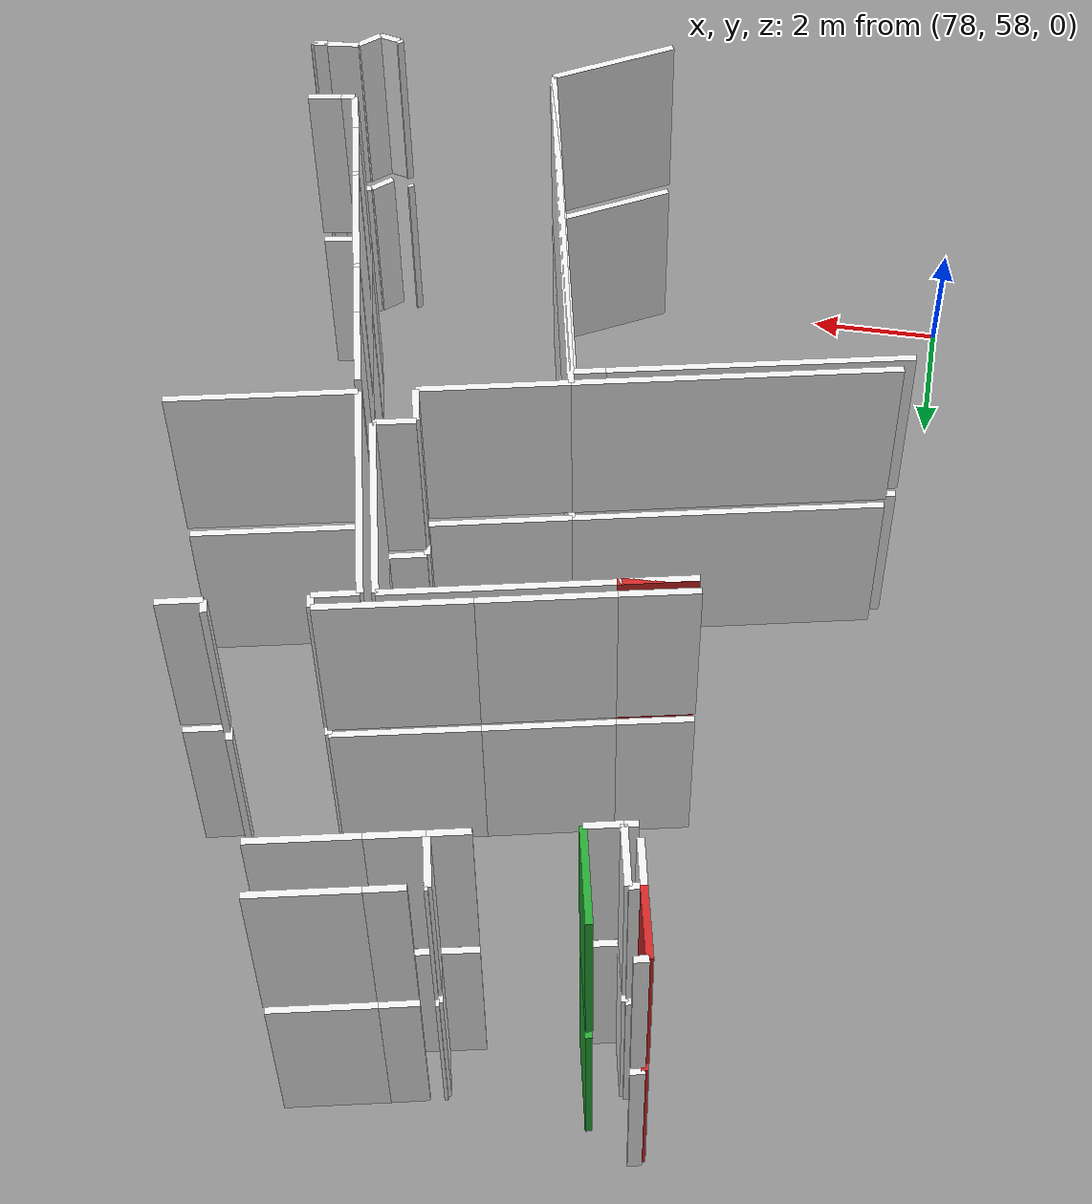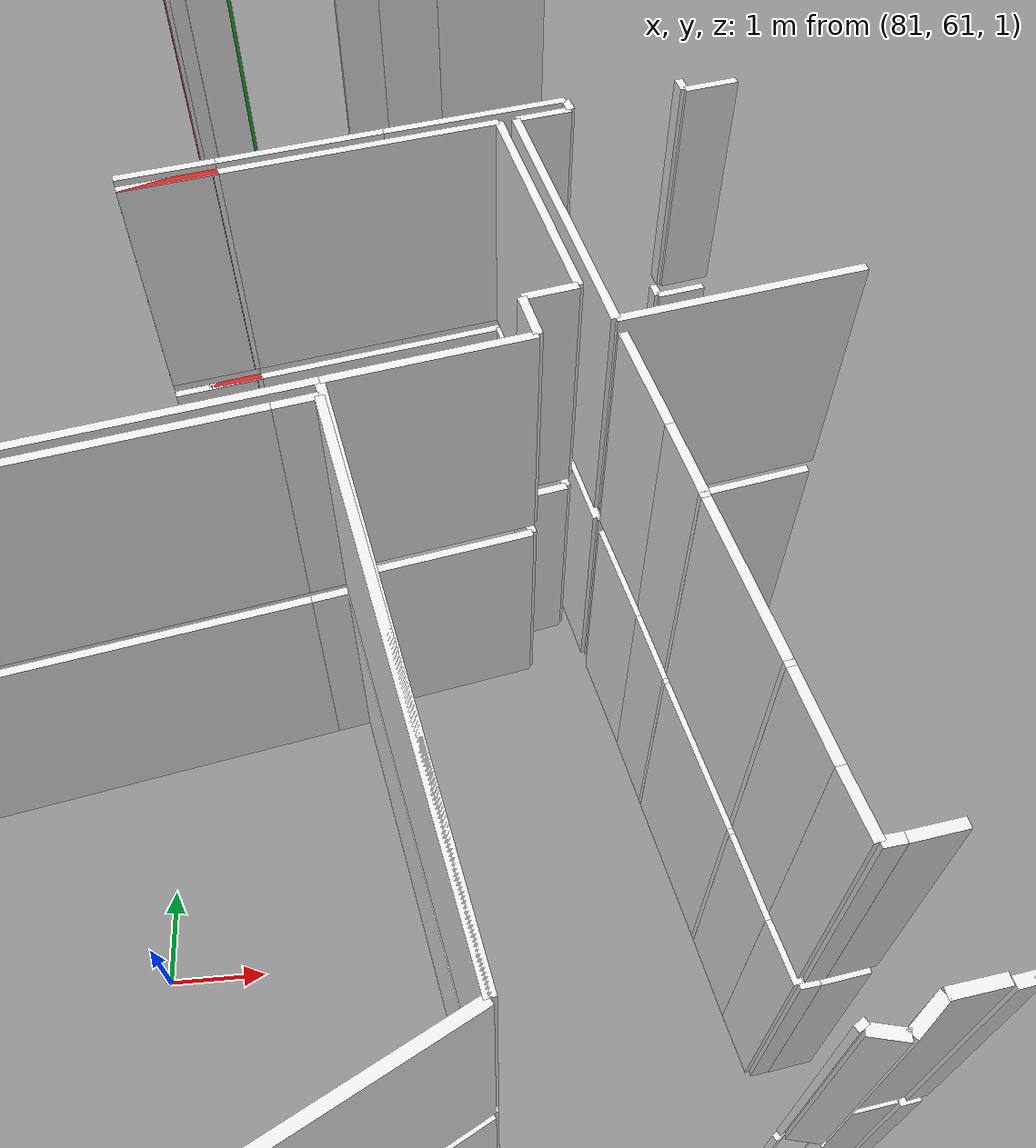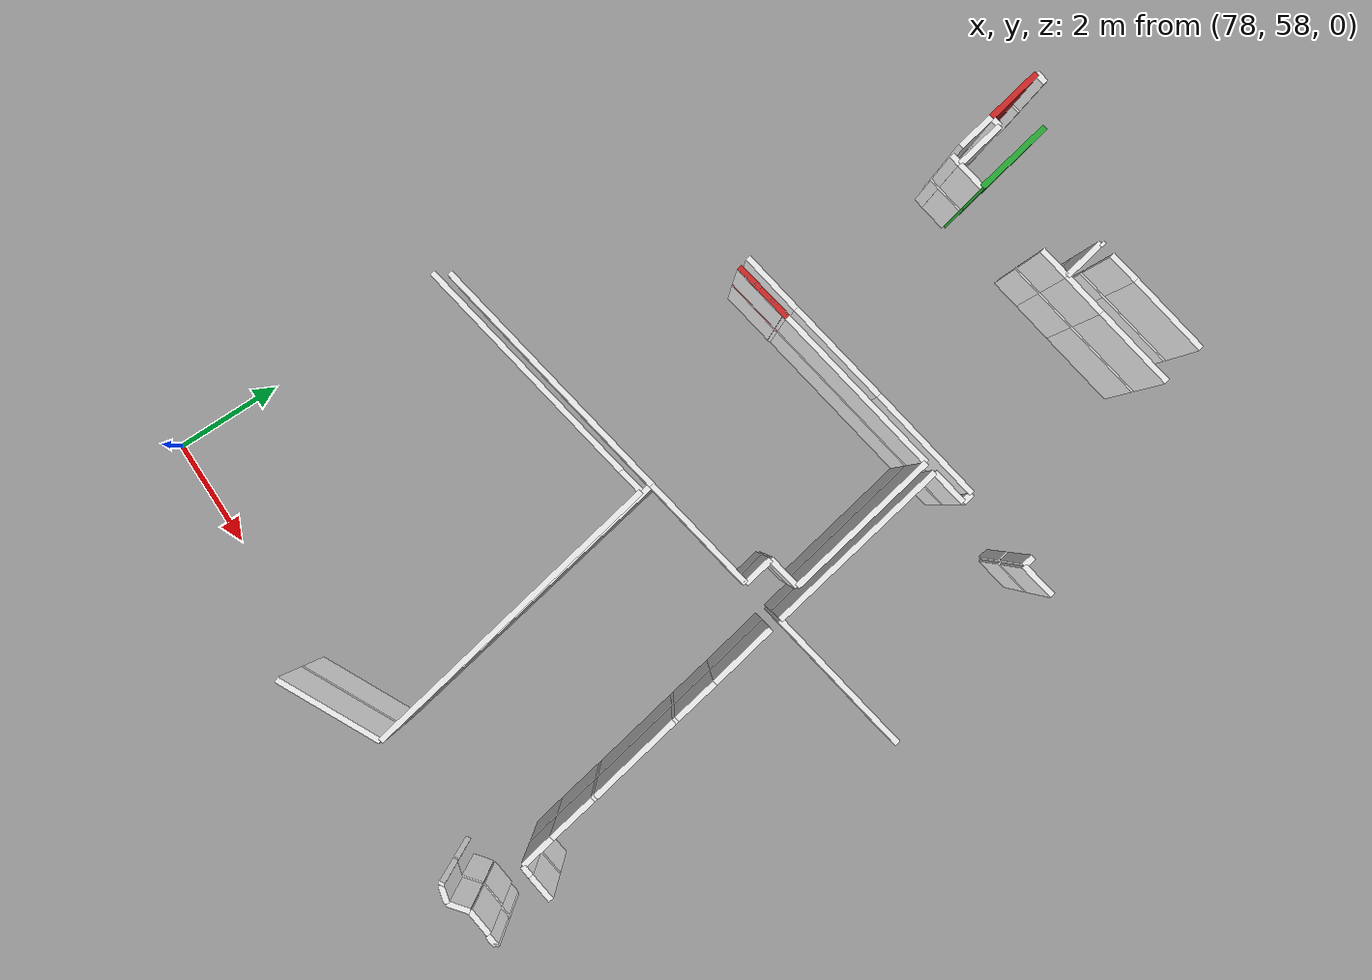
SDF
<sdf version="1.6">
 <world name="default">
  <model name="wall_81.1_72.9_0.0">
   <static>true</static>
   <pose>81.05000000001746 72.92000000015832 1.5 0 0 1.7721134351846652</pose>
   <link name="link">
    <visual name="visual">
     <geometry><box><size>1.0001999799880765 0.1 3</size></box></geometry>
     <material>
      <script><uri>file://media/materials/scripts/gazebo.material</uri><name>Gazebo/Red</name></script>
     </material>
    </visual>
   </link>
  </model>
  <model name="wall_81.6_67.9_0.0">
   <static>true</static>
   <pose>81.55000000001746 67.88999999989755 1.5 0 0 0.2009542638673007</pose>
   <link name="link">
    <visual name="visual">
     <geometry><box><size>1.1021796587332557 0.1 3</size></box></geometry>
     <material>
      <script><uri>file://media/materials/scripts/gazebo.material</uri><name>Gazebo/Red</name></script>
     </material>
    </visual>
   </link>
  </model>
  <model name="wall_81.9_72.4_0.0">
   <static>true</static>
   <pose>81.875 72.38500000000931 1.5 0 0 1.7681918866447774</pose>
   <link name="link">
    <visual name="visual">
     <geometry><box><size>1.3767352687650285 0.1 3</size></box></geometry>
     <material>
      <script><uri>file://media/materials/scripts/gazebo.material</uri><name>Gazebo/Green</name></script>
     </material>
    </visual>
   </link>
  </model>
  <model name="wall_81.2_72.1_0.0">
   <static>true</static>
   <pose>81.21500000002561 72.10000000009313 1.5 0 0 1.7652764429739842</pose>
   <link name="link">
    <visual name="visual">
     <geometry><box><size>0.6726812025007879 0.1 3</size></box></geometry>
     <material>
      <script><uri>file://media/materials/scripts/gazebo.material</uri><name>Gazebo/White</name></script>
     </material>
    </visual>
   </link>
  </model>
  <model name="wall_80.9_64.3_0.0">
   <static>true</static>
   <pose>80.89999999999418 64.30999999982305 1.5 0 0 0.19486391966931105</pose>
   <link name="link">
    <visual name="visual">
     <geometry><box><size>4.647967297627117 0.1 3</size></box></geometry>
     <material>
      <script><uri>file://media/materials/scripts/gazebo.material</uri><name>Gazebo/White</name></script>
     </material>
    </visual>
   </link>
  </model>
  <model name="wall_84.2_65.0_0.0">
   <static>true</static>
   <pose>84.23999999999069 64.96999999997206 1.5 0 0 0.1955806799877843</pose>
   <link name="link">
    <visual name="visual">
     <geometry><box><size>2.1612033685678047 0.1 3</size></box></geometry>
     <material>
      <script><uri>file://media/materials/scripts/gazebo.material</uri><name>Gazebo/White</name></script>
     </material>
    </visual>
   </link>
  </model>
  <model name="wall_85.2_65.5_0.0">
   <static>true</static>
   <pose>85.24499999999534 65.45000000018626 1.5 0 0 1.7717505904446613</pose>
   <link name="link">
    <visual name="visual">
     <geometry><box><size>0.551089829371909 0.1 3</size></box></geometry>
     <material>
      <script><uri>file://media/materials/scripts/gazebo.material</uri><name>Gazebo/White</name></script>
     </material>
    </visual>
   </link>
  </model>
  <model name="wall_85.5_65.8_0.0">
   <static>true</static>
   <pose>85.48500000001513 65.78000000002794 1.5 0 0 0.20065287673540141</pose>
   <link name="link">
    <visual name="visual">
     <geometry><box><size>0.6020797288941763 0.1 3</size></box></geometry>
     <material>
      <script><uri>file://media/materials/scripts/gazebo.material</uri><name>Gazebo/White</name></script>
     </material>
    </visual>
   </link>
  </model>
  <model name="wall_85.5_67.2_0.0">
   <static>true</static>
   <pose>85.5 67.22999999998137 1.5 0 0 1.7695750116283997</pose>
   <link name="link">
    <visual name="visual">
     <geometry><box><size>2.835842026896503 0.1 3</size></box></geometry>
     <material>
      <script><uri>file://media/materials/scripts/gazebo.material</uri><name>Gazebo/White</name></script>
     </material>
    </visual>
   </link>
  </model>
  <model name="wall_83.7_68.3_0.0">
   <static>true</static>
   <pose>83.65499999999884 68.31000000005588 1.5 0 0 -2.9460409760625255</pose>
   <link name="link">
    <visual name="visual">
     <geometry><box><size>3.190814942895208 0.1 3</size></box></geometry>
     <material>
      <script><uri>file://media/materials/scripts/gazebo.material</uri><name>Gazebo/White</name></script>
     </material>
    </visual>
   </link>
  </model>
  <model name="wall_82.1_68.0_0.0">
   <static>true</static>
   <pose>82.06000000002678 67.98999999999069 1.5 0 0 -2.8198420989021127</pose>
   <link name="link">
    <visual name="visual">
     <geometry><box><size>0.06324555320704896 0.1 3</size></box></geometry>
     <material>
      <script><uri>file://media/materials/scripts/gazebo.material</uri><name>Gazebo/White</name></script>
     </material>
    </visual>
   </link>
  </model>
  <model name="wall_81.5_67.9_0.0">
   <static>true</static>
   <pose>81.52000000001863 67.87999999988824 1.5 0 0 -2.9479706605614444</pose>
   <link name="link">
    <visual name="visual">
     <geometry><box><size>1.039422916869021 0.1 3</size></box></geometry>
     <material>
      <script><uri>file://media/materials/scripts/gazebo.material</uri><name>Gazebo/White</name></script>
     </material>
    </visual>
   </link>
  </model>
  <model name="wall_87.8_69.1_0.0">
   <static>true</static>
   <pose>87.75 69.11499999999069 1.5 0 0 -2.9411940992371117</pose>
   <link name="link">
    <visual name="visual">
     <geometry><box><size>0.653069674774366 0.1 3</size></box></geometry>
     <material>
      <script><uri>file://media/materials/scripts/gazebo.material</uri><name>Gazebo/White</name></script>
     </material>
    </visual>
   </link>
  </model>
  <model name="wall_85.7_68.7_0.0">
   <static>true</static>
   <pose>85.73999999999069 68.71499999985099 1.5 0 0 -2.9411940999358763</pose>
   <link name="link">
    <visual name="visual">
     <geometry><box><size>0.6530696746816714 0.1 3</size></box></geometry>
     <material>
      <script><uri>file://media/materials/scripts/gazebo.material</uri><name>Gazebo/White</name></script>
     </material>
    </visual>
   </link>
  </model>
  <model name="wall_85.8_67.0_0.0">
   <static>true</static>
   <pose>85.75 66.98999999999069 1.5 0 0 -1.374559514958863</pose>
   <link name="link">
    <visual name="visual">
     <geometry><box><size>3.384966764819104 0.1 3</size></box></geometry>
     <material>
      <script><uri>file://media/materials/scripts/gazebo.material</uri><name>Gazebo/White</name></script>
     </material>
    </visual>
   </link>
  </model>
  <model name="wall_87.4_65.6_0.0">
   <static>true</static>
   <pose>87.40499999999884 65.59000000008382 1.5 0 0 0.19376449375486982</pose>
   <link name="link">
    <visual name="visual">
     <geometry><box><size>2.70053698360794 0.1 3</size></box></geometry>
     <material>
      <script><uri>file://media/materials/scripts/gazebo.material</uri><name>Gazebo/White</name></script>
     </material>
    </visual>
   </link>
  </model>
  <model name="wall_88.0_58.8_0.0">
   <static>true</static>
   <pose>88.01500000001397 58.769999999785796 1.5 0 0 -1.1071487177940904</pose>
   <link name="link">
    <visual name="visual">
     <geometry><box><size>0.022360679795822902 0.1 3</size></box></geometry>
     <material>
      <script><uri>file://media/materials/scripts/gazebo.material</uri><name>Gazebo/White</name></script>
     </material>
    </visual>
   </link>
  </model>
  <model name="wall_87.9_58.7_0.0">
   <static>true</static>
   <pose>87.9200000000128 58.74499999987893 1.5 0 0 -2.992702706990747</pose>
   <link name="link">
    <visual name="visual">
     <geometry><box><size>0.20223748414268597 0.1 3</size></box></geometry>
     <material>
      <script><uri>file://media/materials/scripts/gazebo.material</uri><name>Gazebo/White</name></script>
     </material>
    </visual>
   </link>
  </model>
  <model name="wall_86.7_58.6_0.0">
   <static>true</static>
   <pose>86.72500000000582 58.55499999993481 1.5 0 0 -1.0303768294346956</pose>
   <link name="link">
    <visual name="visual">
     <geometry><box><size>0.058309519172461015 0.1 3</size></box></geometry>
     <material>
      <script><uri>file://media/materials/scripts/gazebo.material</uri><name>Gazebo/White</name></script>
     </material>
    </visual>
   </link>
  </model>
  <model name="wall_87.2_58.6_0.0">
   <static>true</static>
   <pose>87.19000000000233 58.580000000074506 1.5 0 0 0.6747409426021391</pose>
   <link name="link">
    <visual name="visual">
     <geometry><box><size>0.38418745442196317 0.1 3</size></box></geometry>
     <material>
      <script><uri>file://media/materials/scripts/gazebo.material</uri><name>Gazebo/White</name></script>
     </material>
    </visual>
   </link>
  </model>
  <model name="wall_87.6_58.7_0.0">
   <static>true</static>
   <pose>87.57500000001164 58.72999999998137 1.5 0 0 0.12697278876365076</pose>
   <link name="link">
    <visual name="visual">
     <geometry><box><size>0.4738143095396791 0.1 3</size></box></geometry>
     <material>
      <script><uri>file://media/materials/scripts/gazebo.material</uri><name>Gazebo/White</name></script>
     </material>
    </visual>
   </link>
  </model>
  <model name="wall_87.8_58.7_0.0">
   <static>true</static>
   <pose>87.81500000000233 58.74499999987893 1.5 0 0 -1.249045770069948</pose>
   <link name="link">
    <visual name="visual">
     <geometry><box><size>0.031622776410252254 0.1 3</size></box></geometry>
     <material>
      <script><uri>file://media/materials/scripts/gazebo.material</uri><name>Gazebo/White</name></script>
     </material>
    </visual>
   </link>
  </model>
  <model name="wall_84.3_72.9_0.0">
   <static>true</static>
   <pose>84.29000000000815 72.92500000004657 1.5 0 0 0.2009542634638528</pose>
   <link name="link">
    <visual name="visual">
     <geometry><box><size>0.5510898292916356 0.1 3</size></box></geometry>
     <material>
      <script><uri>file://media/materials/scripts/gazebo.material</uri><name>Gazebo/White</name></script>
     </material>
    </visual>
   </link>
  </model>
  <model name="wall_85.3_73.1_0.0">
   <static>true</static>
   <pose>85.2950000000128 73.125 1.5 0 0 0.19477776480304612</pose>
   <link name="link">
    <visual name="visual">
     <geometry><box><size>1.4983324064140755 0.1 3</size></box></geometry>
     <material>
      <script><uri>file://media/materials/scripts/gazebo.material</uri><name>Gazebo/White</name></script>
     </material>
    </visual>
   </link>
  </model>
  <model name="wall_83.8_72.8_0.0">
   <static>true</static>
   <pose>83.7950000000128 72.83499999996275 1.5 0 0 -2.9441970979935492</pose>
   <link name="link">
    <visual name="visual">
     <geometry><box><size>0.050990195080677016 0.1 3</size></box></geometry>
     <material>
      <script><uri>file://media/materials/scripts/gazebo.material</uri><name>Gazebo/White</name></script>
     </material>
    </visual>
   </link>
  </model>
  <model name="wall_83.8_72.5_0.0">
   <static>true</static>
   <pose>83.84500000000116 72.45999999996275 1.5 0 0 -1.3708033702928581</pose>
   <link name="link">
    <visual name="visual">
     <geometry><box><size>0.7550496674526308 0.1 3</size></box></geometry>
     <material>
      <script><uri>file://media/materials/scripts/gazebo.material</uri><name>Gazebo/White</name></script>
     </material>
    </visual>
   </link>
  </model>
  <model name="wall_83.6_72.0_0.0">
   <static>true</static>
   <pose>83.63999999998487 72.03499999991618 1.5 0 0 -2.9476335065532946</pose>
   <link name="link">
    <visual name="visual">
     <geometry><box><size>0.5707013229077953 0.1 3</size></box></geometry>
     <material>
      <script><uri>file://media/materials/scripts/gazebo.material</uri><name>Gazebo/White</name></script>
     </material>
    </visual>
   </link>
  </model>
  <model name="wall_81.8_71.7_0.0">
   <static>true</static>
   <pose>81.76000000000931 71.65999999991618 1.5 0 0 -2.944197093560812</pose>
   <link name="link">
    <visual name="visual">
     <geometry><box><size>0.5099019513775432 0.1 3</size></box></geometry>
     <material>
      <script><uri>file://media/materials/scripts/gazebo.material</uri><name>Gazebo/White</name></script>
     </material>
    </visual>
   </link>
  </model>
  <model name="wall_81.4_72.0_0.0">
   <static>true</static>
   <pose>81.42500000001746 72.04000000003725 1.5 0 0 1.7659547538191616</pose>
   <link name="link">
    <visual name="visual">
     <geometry><box><size>0.8766413180834757 0.1 3</size></box></geometry>
     <material>
      <script><uri>file://media/materials/scripts/gazebo.material</uri><name>Gazebo/White</name></script>
     </material>
    </visual>
   </link>
  </model>
  <model name="wall_81.2_72.5_0.0">
   <static>true</static>
   <pose>81.24500000002445 72.45000000018626 1.5 0 0 -2.9340964269693144</pose>
   <link name="link">
    <visual name="visual">
     <geometry><box><size>0.19416487839942884 0.1 3</size></box></geometry>
     <material>
      <script><uri>file://media/materials/scripts/gazebo.material</uri><name>Gazebo/White</name></script>
     </material>
    </visual>
   </link>
  </model>
  <model name="wall_81.1_73.4_0.0">
   <static>true</static>
   <pose>81.05000000001746 73.43000000016764 1.5 0 0 0.19739556001778746</pose>
   <link name="link">
    <visual name="visual">
     <geometry><box><size>0.20396078056243275 0.1 3</size></box></geometry>
     <material>
      <script><uri>file://media/materials/scripts/gazebo.material</uri><name>Gazebo/White</name></script>
     </material>
    </visual>
   </link>
  </model>
  <model name="wall_87.6_59.8_0.0">
   <static>true</static>
   <pose>87.63500000000931 59.84499999997206 1.5 0 0 -2.9996955993182444</pose>
   <link name="link">
    <visual name="visual">
     <geometry><box><size>0.494974746797656 0.1 3</size></box></geometry>
     <material>
      <script><uri>file://media/materials/scripts/gazebo.material</uri><name>Gazebo/White</name></script>
     </material>
    </visual>
   </link>
  </model>
  <model name="wall_87.3_59.8_0.0">
   <static>true</static>
   <pose>87.29000000000815 59.800000000046566 1.5 0 0 -3.0419240010121844</pose>
   <link name="link">
    <visual name="visual">
     <geometry><box><size>0.20099751243585498 0.1 3</size></box></geometry>
     <material>
      <script><uri>file://media/materials/scripts/gazebo.material</uri><name>Gazebo/White</name></script>
     </material>
    </visual>
   </link>
  </model>
  <model name="wall_87.1_60.1_0.0">
   <static>true</static>
   <pose>87.125 60.10000000009313 1.5 0 0 1.7774795452501364</pose>
   <link name="link">
    <visual name="visual">
     <geometry><box><size>0.6334824386988099 0.1 3</size></box></geometry>
     <material>
      <script><uri>file://media/materials/scripts/gazebo.material</uri><name>Gazebo/White</name></script>
     </material>
    </visual>
   </link>
  </model>
  <model name="wall_87.0_60.9_0.0">
   <static>true</static>
   <pose>86.97500000000582 60.85000000009313 1.5 0 0 1.7616274295219554</pose>
   <link name="link">
    <visual name="visual">
     <geometry><box><size>0.896270048477446 0.1 3</size></box></geometry>
     <material>
      <script><uri>file://media/materials/scripts/gazebo.material</uri><name>Gazebo/White</name></script>
     </material>
    </visual>
   </link>
  </model>
  <model name="wall_86.9_61.3_0.0">
   <static>true</static>
   <pose>86.88500000000931 61.32000000006519 1.5 0 0 1.7359450042095235</pose>
   <link name="link">
    <visual name="visual">
     <geometry><box><size>0.060827625359632334 0.1 3</size></box></geometry>
     <material>
      <script><uri>file://media/materials/scripts/gazebo.material</uri><name>Gazebo/White</name></script>
     </material>
    </visual>
   </link>
  </model>
  <model name="wall_86.7_62.2_0.0">
   <static>true</static>
   <pose>86.70999999999185 62.19500000006519 1.5 0 0 1.7693295426026865</pose>
   <link name="link">
    <visual name="visual">
     <geometry><box><size>1.7238619433784548 0.1 3</size></box></geometry>
     <material>
      <script><uri>file://media/materials/scripts/gazebo.material</uri><name>Gazebo/White</name></script>
     </material>
    </visual>
   </link>
  </model>
  <model name="wall_86.5_63.1_0.0">
   <static>true</static>
   <pose>86.53500000000349 63.07000000006519 1.5 0 0 1.7359450032656154</pose>
   <link name="link">
    <visual name="visual">
     <geometry><box><size>0.06082762535006306 0.1 3</size></box></geometry>
     <material>
      <script><uri>file://media/materials/scripts/gazebo.material</uri><name>Gazebo/White</name></script>
     </material>
    </visual>
   </link>
  </model>
  <model name="wall_86.5_63.5_0.0">
   <static>true</static>
   <pose>86.45000000001164 63.51000000000931 1.5 0 0 1.7634970855340029</pose>
   <link name="link">
    <visual name="visual">
     <geometry><box><size>0.8354639428099243 0.1 3</size></box></geometry>
     <material>
      <script><uri>file://media/materials/scripts/gazebo.material</uri><name>Gazebo/White</name></script>
     </material>
    </visual>
   </link>
  </model>
  <model name="wall_86.2_64.5_0.0">
   <static>true</static>
   <pose>86.24499999999534 64.52499999990687 1.5 0 0 1.7745410076848542</pose>
   <link name="link">
    <visual name="visual">
     <geometry><box><size>1.2355565547193088 0.1 3</size></box></geometry>
     <material>
      <script><uri>file://media/materials/scripts/gazebo.material</uri><name>Gazebo/White</name></script>
     </material>
    </visual>
   </link>
  </model>
  <model name="wall_87.4_69.1_0.0">
   <static>true</static>
   <pose>87.41000000000349 69.14999999990687 1.5 0 0 -1.3734007672248605</pose>
   <link name="link">
    <visual name="visual">
     <geometry><box><size>0.2039607807222492 0.1 3</size></box></geometry>
     <material>
      <script><uri>file://media/materials/scripts/gazebo.material</uri><name>Gazebo/White</name></script>
     </material>
    </visual>
   </link>
  </model>
  <model name="wall_86.0_68.9_0.0">
   <static>true</static>
   <pose>86.04000000000815 68.875 1.5 0 0 1.7782925526897098</pose>
   <link name="link">
    <visual name="visual">
     <geometry><box><size>0.1941648787861511 0.1 3</size></box></geometry>
     <material>
      <script><uri>file://media/materials/scripts/gazebo.material</uri><name>Gazebo/White</name></script>
     </material>
    </visual>
   </link>
  </model>
  <model name="wall_85.0_68.8_0.0">
   <static>true</static>
   <pose>84.96499999999651 68.76500000013039 1.5 0 0 -2.9496714915424067</pose>
   <link name="link">
    <visual name="visual">
     <geometry><box><size>2.1494650497993386 0.1 3</size></box></geometry>
     <material>
      <script><uri>file://media/materials/scripts/gazebo.material</uri><name>Gazebo/White</name></script>
     </material>
    </visual>
   </link>
  </model>
  <model name="wall_83.0_68.4_0.0">
   <static>true</static>
   <pose>82.97999999998137 68.375 1.5 0 0 -2.9452312194754318</pose>
   <link name="link">
    <visual name="visual">
     <geometry><box><size>1.8964440408382035 0.1 3</size></box></geometry>
     <material>
      <script><uri>file://media/materials/scripts/gazebo.material</uri><name>Gazebo/White</name></script>
     </material>
    </visual>
   </link>
  </model>
  <model name="wall_81.5_68.1_0.0">
   <static>true</static>
   <pose>81.50500000000466 68.08499999996275 1.5 0 0 -2.9512641139252844</pose>
   <link name="link">
    <visual name="visual">
     <geometry><box><size>1.1100450440920377 0.1 3</size></box></geometry>
     <material>
      <script><uri>file://media/materials/scripts/gazebo.material</uri><name>Gazebo/White</name></script>
     </material>
    </visual>
   </link>
  </model>
  <model name="wall_81.4_71.6_0.0">
   <static>true</static>
   <pose>81.41500000000815 71.59499999997206 1.5 0 0 0.15660187592798475</pose>
   <link name="link">
    <visual name="visual">
     <geometry><box><size>0.19235384058705793 0.1 3</size></box></geometry>
     <material>
      <script><uri>file://media/materials/scripts/gazebo.material</uri><name>Gazebo/White</name></script>
     </material>
    </visual>
   </link>
  </model>
  <model name="wall_84.3_72.2_0.0">
   <static>true</static>
   <pose>84.30999999999767 72.16500000003725 1.5 0 0 0.18998828837264137</pose>
   <link name="link">
    <visual name="visual">
     <geometry><box><size>0.7942921377902116 0.1 3</size></box></geometry>
     <material>
      <script><uri>file://media/materials/scripts/gazebo.material</uri><name>Gazebo/White</name></script>
     </material>
    </visual>
   </link>
  </model>
  <model name="wall_85.4_72.4_0.0">
   <static>true</static>
   <pose>85.44000000000233 72.38500000000931 1.5 0 0 0.19349440901301387</pose>
   <link name="link">
    <visual name="visual">
     <geometry><box><size>1.5081445553050903 0.1 3</size></box></geometry>
     <material>
      <script><uri>file://media/materials/scripts/gazebo.material</uri><name>Gazebo/White</name></script>
     </material>
    </visual>
   </link>
  </model>
  <model name="wall_80.6_64.1_0.0">
   <static>true</static>
   <pose>80.59999999997672 64.05000000004657 1.5 0 0 0.19468553945508393</pose>
   <link name="link">
    <visual name="visual">
     <geometry><box><size>4.342027176401746 0.1 3</size></box></geometry>
     <material>
      <script><uri>file://media/materials/scripts/gazebo.material</uri><name>Gazebo/White</name></script>
     </material>
    </visual>
   </link>
  </model>
  <model name="wall_83.0_64.5_0.0">
   <static>true</static>
   <pose>82.9549999999872 64.51500000013039 1.5 0 0 0.19739555952650487</pose>
   <link name="link">
    <visual name="visual">
     <geometry><box><size>0.45891175620554253 0.1 3</size></box></geometry>
     <material>
      <script><uri>file://media/materials/scripts/gazebo.material</uri><name>Gazebo/White</name></script>
     </material>
    </visual>
   </link>
  </model>
  <model name="wall_83.7_61.8_0.0">
   <static>true</static>
   <pose>83.73999999999069 61.75500000012107 1.5 0 0 -1.3737435848915833</pose>
   <link name="link">
    <visual name="visual">
     <geometry><box><size>5.720707998012715 0.1 3</size></box></geometry>
     <material>
      <script><uri>file://media/materials/scripts/gazebo.material</uri><name>Gazebo/White</name></script>
     </material>
    </visual>
   </link>
  </model>
  <model name="wall_83.4_58.5_0.0">
   <static>true</static>
   <pose>83.44500000000698 58.515000000130385 1.5 0 0 -2.6709521515229318</pose>
   <link name="link">
    <visual name="visual">
     <geometry><box><size>1.9185932346558128 0.1 3</size></box></geometry>
     <material>
      <script><uri>file://media/materials/scripts/gazebo.material</uri><name>Gazebo/White</name></script>
     </material>
    </visual>
   </link>
  </model>
  <model name="wall_83.7_61.9_0.0">
   <static>true</static>
   <pose>83.73999999999069 61.85499999998137 1.5 0 0 1.761231442220787</pose>
   <link name="link">
    <visual name="visual">
     <geometry><box><size>5.91696712811791 0.1 3</size></box></geometry>
     <material>
      <script><uri>file://media/materials/scripts/gazebo.material</uri><name>Gazebo/White</name></script>
     </material>
    </visual>
   </link>
  </model>
  <model name="wall_81.1_72.9_3.2">
   <static>true</static>
   <pose>81.05000000001746 72.92000000015832 4.7 0 0 1.7721134351846652</pose>
   <link name="link">
    <visual name="visual">
     <geometry><box><size>1.0001999799880765 0.1 3</size></box></geometry>
     <material>
      <script><uri>file://media/materials/scripts/gazebo.material</uri><name>Gazebo/Red</name></script>
     </material>
    </visual>
   </link>
  </model>
  <model name="wall_81.6_67.9_3.2">
   <static>true</static>
   <pose>81.55000000001746 67.88999999989755 4.7 0 0 0.2009542638673007</pose>
   <link name="link">
    <visual name="visual">
     <geometry><box><size>1.1021796587332557 0.1 3</size></box></geometry>
     <material>
      <script><uri>file://media/materials/scripts/gazebo.material</uri><name>Gazebo/Red</name></script>
     </material>
    </visual>
   </link>
  </model>
  <model name="wall_81.9_72.4_3.2">
   <static>true</static>
   <pose>81.875 72.38500000000931 4.7 0 0 1.7681918866447774</pose>
   <link name="link">
    <visual name="visual">
     <geometry><box><size>1.3767352687650285 0.1 3</size></box></geometry>
     <material>
      <script><uri>file://media/materials/scripts/gazebo.material</uri><name>Gazebo/Green</name></script>
     </material>
    </visual>
   </link>
  </model>
  <model name="wall_81.2_72.1_3.2">
   <static>true</static>
   <pose>81.21500000002561 72.10000000009313 4.7 0 0 1.7652764429739842</pose>
   <link name="link">
    <visual name="visual">
     <geometry><box><size>0.6726812025007879 0.1 3</size></box></geometry>
     <material>
      <script><uri>file://media/materials/scripts/gazebo.material</uri><name>Gazebo/White</name></script>
     </material>
    </visual>
   </link>
  </model>
  <model name="wall_80.9_64.3_3.2">
   <static>true</static>
   <pose>80.89999999999418 64.30999999982305 4.7 0 0 0.19486391966931105</pose>
   <link name="link">
    <visual name="visual">
     <geometry><box><size>4.647967297627117 0.1 3</size></box></geometry>
     <material>
      <script><uri>file://media/materials/scripts/gazebo.material</uri><name>Gazebo/White</name></script>
     </material>
    </visual>
   </link>
  </model>
  <model name="wall_84.2_65.0_3.2">
   <static>true</static>
   <pose>84.23999999999069 64.96999999997206 4.7 0 0 0.1955806799877843</pose>
   <link name="link">
    <visual name="visual">
     <geometry><box><size>2.1612033685678047 0.1 3</size></box></geometry>
     <material>
      <script><uri>file://media/materials/scripts/gazebo.material</uri><name>Gazebo/White</name></script>
     </material>
    </visual>
   </link>
  </model>
  <model name="wall_85.2_65.5_3.2">
   <static>true</static>
   <pose>85.24499999999534 65.45000000018626 4.7 0 0 1.7717505904446613</pose>
   <link name="link">
    <visual name="visual">
     <geometry><box><size>0.551089829371909 0.1 3</size></box></geometry>
     <material>
      <script><uri>file://media/materials/scripts/gazebo.material</uri><name>Gazebo/White</name></script>
     </material>
    </visual>
   </link>
  </model>
  <model name="wall_85.5_65.8_3.2">
   <static>true</static>
   <pose>85.48500000001513 65.78000000002794 4.7 0 0 0.20065287673540141</pose>
   <link name="link">
    <visual name="visual">
     <geometry><box><size>0.6020797288941763 0.1 3</size></box></geometry>
     <material>
      <script><uri>file://media/materials/scripts/gazebo.material</uri><name>Gazebo/White</name></script>
     </material>
    </visual>
   </link>
  </model>
  <model name="wall_85.5_67.2_3.2">
   <static>true</static>
   <pose>85.5 67.22999999998137 4.7 0 0 1.7695750116283997</pose>
   <link name="link">
    <visual name="visual">
     <geometry><box><size>2.835842026896503 0.1 3</size></box></geometry>
     <material>
      <script><uri>file://media/materials/scripts/gazebo.material</uri><name>Gazebo/White</name></script>
     </material>
    </visual>
   </link>
  </model>
  <model name="wall_83.7_68.3_3.2">
   <static>true</static>
   <pose>83.65499999999884 68.31000000005588 4.7 0 0 -2.9460409760625255</pose>
   <link name="link">
    <visual name="visual">
     <geometry><box><size>3.190814942895208 0.1 3</size></box></geometry>
     <material>
      <script><uri>file://media/materials/scripts/gazebo.material</uri><name>Gazebo/White</name></script>
     </material>
    </visual>
   </link>
  </model>
  <model name="wall_82.1_68.0_3.2">
   <static>true</static>
   <pose>82.06000000002678 67.98999999999069 4.7 0 0 -2.8198420989021127</pose>
   <link name="link">
    <visual name="visual">
     <geometry><box><size>0.06324555320704896 0.1 3</size></box></geometry>
     <material>
      <script><uri>file://media/materials/scripts/gazebo.material</uri><name>Gazebo/White</name></script>
     </material>
    </visual>
   </link>
  </model>
  <model name="wall_81.5_67.9_3.2">
   <static>true</static>
   <pose>81.52000000001863 67.87999999988824 4.7 0 0 -2.9479706605614444</pose>
   <link name="link">
    <visual name="visual">
     <geometry><box><size>1.039422916869021 0.1 3</size></box></geometry>
     <material>
      <script><uri>file://media/materials/scripts/gazebo.material</uri><name>Gazebo/White</name></script>
     </material>
    </visual>
   </link>
  </model>
  <model name="wall_87.8_69.1_3.2">
   <static>true</static>
   <pose>87.75 69.11499999999069 4.7 0 0 -2.9411940992371117</pose>
   <link name="link">
    <visual name="visual">
     <geometry><box><size>0.653069674774366 0.1 3</size></box></geometry>
     <material>
      <script><uri>file://media/materials/scripts/gazebo.material</uri><name>Gazebo/White</name></script>
     </material>
    </visual>
   </link>
  </model>
  <model name="wall_85.7_68.7_3.2">
   <static>true</static>
   <pose>85.73999999999069 68.71499999985099 4.7 0 0 -2.9411940999358763</pose>
   <link name="link">
    <visual name="visual">
     <geometry><box><size>0.6530696746816714 0.1 3</size></box></geometry>
     <material>
      <script><uri>file://media/materials/scripts/gazebo.material</uri><name>Gazebo/White</name></script>
     </material>
    </visual>
   </link>
  </model>
  <model name="wall_85.8_67.0_3.2">
   <static>true</static>
   <pose>85.75 66.98999999999069 4.7 0 0 -1.374559514958863</pose>
   <link name="link">
    <visual name="visual">
     <geometry><box><size>3.384966764819104 0.1 3</size></box></geometry>
     <material>
      <script><uri>file://media/materials/scripts/gazebo.material</uri><name>Gazebo/White</name></script>
     </material>
    </visual>
   </link>
  </model>
  <model name="wall_87.4_65.6_3.2">
   <static>true</static>
   <pose>87.40499999999884 65.59000000008382 4.7 0 0 0.19376449375486982</pose>
   <link name="link">
    <visual name="visual">
     <geometry><box><size>2.70053698360794 0.1 3</size></box></geometry>
     <material>
      <script><uri>file://media/materials/scripts/gazebo.material</uri><name>Gazebo/White</name></script>
     </material>
    </visual>
   </link>
  </model>
  <model name="wall_88.0_58.8_3.2">
   <static>true</static>
   <pose>88.01500000001397 58.769999999785796 4.7 0 0 -1.1071487177940904</pose>
   <link name="link">
    <visual name="visual">
     <geometry><box><size>0.022360679795822902 0.1 3</size></box></geometry>
     <material>
      <script><uri>file://media/materials/scripts/gazebo.material</uri><name>Gazebo/White</name></script>
     </material>
    </visual>
   </link>
  </model>
  <model name="wall_87.9_58.7_3.2">
   <static>true</static>
   <pose>87.9200000000128 58.74499999987893 4.7 0 0 -2.992702706990747</pose>
   <link name="link">
    <visual name="visual">
     <geometry><box><size>0.20223748414268597 0.1 3</size></box></geometry>
     <material>
      <script><uri>file://media/materials/scripts/gazebo.material</uri><name>Gazebo/White</name></script>
     </material>
    </visual>
   </link>
  </model>
  <model name="wall_86.7_58.6_3.2">
   <static>true</static>
   <pose>86.72500000000582 58.55499999993481 4.7 0 0 -1.0303768294346956</pose>
   <link name="link">
    <visual name="visual">
     <geometry><box><size>0.058309519172461015 0.1 3</size></box></geometry>
     <material>
      <script><uri>file://media/materials/scripts/gazebo.material</uri><name>Gazebo/White</name></script>
     </material>
    </visual>
   </link>
  </model>
  <model name="wall_86.9_58.5_3.2">
   <static>true</static>
   <pose>86.88999999998487 58.49499999987893 4.7 0 0 -0.22923193275564116</pose>
   <link name="link">
    <visual name="visual">
     <geometry><box><size>0.30805843596555793 0.1 3</size></box></geometry>
     <material>
      <script><uri>file://media/materials/scripts/gazebo.material</uri><name>Gazebo/White</name></script>
     </material>
    </visual>
   </link>
  </model>
  <model name="wall_87.2_58.6_3.2">
   <static>true</static>
   <pose>87.19000000000233 58.580000000074506 4.7 0 0 0.6747409426021391</pose>
   <link name="link">
    <visual name="visual">
     <geometry><box><size>0.38418745442196317 0.1 3</size></box></geometry>
     <material>
      <script><uri>file://media/materials/scripts/gazebo.material</uri><name>Gazebo/White</name></script>
     </material>
    </visual>
   </link>
  </model>
  <model name="wall_87.6_58.7_3.2">
   <static>true</static>
   <pose>87.57500000001164 58.72999999998137 4.7 0 0 0.12697278876365076</pose>
   <link name="link">
    <visual name="visual">
     <geometry><box><size>0.4738143095396791 0.1 3</size></box></geometry>
     <material>
      <script><uri>file://media/materials/scripts/gazebo.material</uri><name>Gazebo/White</name></script>
     </material>
    </visual>
   </link>
  </model>
  <model name="wall_87.8_58.7_3.2">
   <static>true</static>
   <pose>87.81500000000233 58.74499999987893 4.7 0 0 -1.249045770069948</pose>
   <link name="link">
    <visual name="visual">
     <geometry><box><size>0.031622776410252254 0.1 3</size></box></geometry>
     <material>
      <script><uri>file://media/materials/scripts/gazebo.material</uri><name>Gazebo/White</name></script>
     </material>
    </visual>
   </link>
  </model>
  <model name="wall_84.3_72.9_3.2">
   <static>true</static>
   <pose>84.29000000000815 72.92500000004657 4.7 0 0 0.2009542634638528</pose>
   <link name="link">
    <visual name="visual">
     <geometry><box><size>0.5510898292916356 0.1 3</size></box></geometry>
     <material>
      <script><uri>file://media/materials/scripts/gazebo.material</uri><name>Gazebo/White</name></script>
     </material>
    </visual>
   </link>
  </model>
  <model name="wall_85.3_73.1_3.2">
   <static>true</static>
   <pose>85.2950000000128 73.125 4.7 0 0 0.19477776480304612</pose>
   <link name="link">
    <visual name="visual">
     <geometry><box><size>1.4983324064140755 0.1 3</size></box></geometry>
     <material>
      <script><uri>file://media/materials/scripts/gazebo.material</uri><name>Gazebo/White</name></script>
     </material>
    </visual>
   </link>
  </model>
  <model name="wall_83.8_72.8_3.2">
   <static>true</static>
   <pose>83.7950000000128 72.83499999996275 4.7 0 0 -2.9441970979935492</pose>
   <link name="link">
    <visual name="visual">
     <geometry><box><size>0.050990195080677016 0.1 3</size></box></geometry>
     <material>
      <script><uri>file://media/materials/scripts/gazebo.material</uri><name>Gazebo/White</name></script>
     </material>
    </visual>
   </link>
  </model>
  <model name="wall_83.8_72.5_3.2">
   <static>true</static>
   <pose>83.84500000000116 72.45999999996275 4.7 0 0 -1.3708033702928581</pose>
   <link name="link">
    <visual name="visual">
     <geometry><box><size>0.7550496674526308 0.1 3</size></box></geometry>
     <material>
      <script><uri>file://media/materials/scripts/gazebo.material</uri><name>Gazebo/White</name></script>
     </material>
    </visual>
   </link>
  </model>
  <model name="wall_83.6_72.0_3.2">
   <static>true</static>
   <pose>83.63999999998487 72.03499999991618 4.7 0 0 -2.9476335065532946</pose>
   <link name="link">
    <visual name="visual">
     <geometry><box><size>0.5707013229077953 0.1 3</size></box></geometry>
     <material>
      <script><uri>file://media/materials/scripts/gazebo.material</uri><name>Gazebo/White</name></script>
     </material>
    </visual>
   </link>
  </model>
  <model name="wall_81.8_71.7_3.2">
   <static>true</static>
   <pose>81.76000000000931 71.65999999991618 4.7 0 0 -2.944197093560812</pose>
   <link name="link">
    <visual name="visual">
     <geometry><box><size>0.5099019513775432 0.1 3</size></box></geometry>
     <material>
      <script><uri>file://media/materials/scripts/gazebo.material</uri><name>Gazebo/White</name></script>
     </material>
    </visual>
   </link>
  </model>
  <model name="wall_81.4_72.0_3.2">
   <static>true</static>
   <pose>81.42500000001746 72.04000000003725 4.7 0 0 1.7659547538191616</pose>
   <link name="link">
    <visual name="visual">
     <geometry><box><size>0.8766413180834757 0.1 3</size></box></geometry>
     <material>
      <script><uri>file://media/materials/scripts/gazebo.material</uri><name>Gazebo/White</name></script>
     </material>
    </visual>
   </link>
  </model>
  <model name="wall_81.2_72.5_3.2">
   <static>true</static>
   <pose>81.24500000002445 72.45000000018626 4.7 0 0 -2.9340964269693144</pose>
   <link name="link">
    <visual name="visual">
     <geometry><box><size>0.19416487839942884 0.1 3</size></box></geometry>
     <material>
      <script><uri>file://media/materials/scripts/gazebo.material</uri><name>Gazebo/White</name></script>
     </material>
    </visual>
   </link>
  </model>
  <model name="wall_81.1_73.4_3.2">
   <static>true</static>
   <pose>81.05000000001746 73.43000000016764 4.7 0 0 0.19739556001778746</pose>
   <link name="link">
    <visual name="visual">
     <geometry><box><size>0.20396078056243275 0.1 3</size></box></geometry>
     <material>
      <script><uri>file://media/materials/scripts/gazebo.material</uri><name>Gazebo/White</name></script>
     </material>
    </visual>
   </link>
  </model>
  <model name="wall_87.6_59.8_3.2">
   <static>true</static>
   <pose>87.63500000000931 59.84499999997206 4.7 0 0 -2.9996955993182444</pose>
   <link name="link">
    <visual name="visual">
     <geometry><box><size>0.494974746797656 0.1 3</size></box></geometry>
     <material>
      <script><uri>file://media/materials/scripts/gazebo.material</uri><name>Gazebo/White</name></script>
     </material>
    </visual>
   </link>
  </model>
  <model name="wall_87.3_59.8_3.2">
   <static>true</static>
   <pose>87.29000000000815 59.800000000046566 4.7 0 0 -3.0419240010121844</pose>
   <link name="link">
    <visual name="visual">
     <geometry><box><size>0.20099751243585498 0.1 3</size></box></geometry>
     <material>
      <script><uri>file://media/materials/scripts/gazebo.material</uri><name>Gazebo/White</name></script>
     </material>
    </visual>
   </link>
  </model>
  <model name="wall_87.1_60.1_3.2">
   <static>true</static>
   <pose>87.125 60.10000000009313 4.7 0 0 1.7774795452501364</pose>
   <link name="link">
    <visual name="visual">
     <geometry><box><size>0.6334824386988099 0.1 3</size></box></geometry>
     <material>
      <script><uri>file://media/materials/scripts/gazebo.material</uri><name>Gazebo/White</name></script>
     </material>
    </visual>
   </link>
  </model>
  <model name="wall_87.0_60.9_3.2">
   <static>true</static>
   <pose>86.97500000000582 60.85000000009313 4.7 0 0 1.7616274295219554</pose>
   <link name="link">
    <visual name="visual">
     <geometry><box><size>0.896270048477446 0.1 3</size></box></geometry>
     <material>
      <script><uri>file://media/materials/scripts/gazebo.material</uri><name>Gazebo/White</name></script>
     </material>
    </visual>
   </link>
  </model>
  <model name="wall_86.9_61.3_3.2">
   <static>true</static>
   <pose>86.88500000000931 61.32000000006519 4.7 0 0 1.7359450042095235</pose>
   <link name="link">
    <visual name="visual">
     <geometry><box><size>0.060827625359632334 0.1 3</size></box></geometry>
     <material>
      <script><uri>file://media/materials/scripts/gazebo.material</uri><name>Gazebo/White</name></script>
     </material>
    </visual>
   </link>
  </model>
  <model name="wall_86.7_62.2_3.2">
   <static>true</static>
   <pose>86.70999999999185 62.19500000006519 4.7 0 0 1.7693295426026865</pose>
   <link name="link">
    <visual name="visual">
     <geometry><box><size>1.7238619433784548 0.1 3</size></box></geometry>
     <material>
      <script><uri>file://media/materials/scripts/gazebo.material</uri><name>Gazebo/White</name></script>
     </material>
    </visual>
   </link>
  </model>
  <model name="wall_86.5_63.1_3.2">
   <static>true</static>
   <pose>86.53500000000349 63.07000000006519 4.7 0 0 1.7359450032656154</pose>
   <link name="link">
    <visual name="visual">
     <geometry><box><size>0.06082762535006306 0.1 3</size></box></geometry>
     <material>
      <script><uri>file://media/materials/scripts/gazebo.material</uri><name>Gazebo/White</name></script>
     </material>
    </visual>
   </link>
  </model>
  <model name="wall_86.5_63.5_3.2">
   <static>true</static>
   <pose>86.45000000001164 63.51000000000931 4.7 0 0 1.7634970855340029</pose>
   <link name="link">
    <visual name="visual">
     <geometry><box><size>0.8354639428099243 0.1 3</size></box></geometry>
     <material>
      <script><uri>file://media/materials/scripts/gazebo.material</uri><name>Gazebo/White</name></script>
     </material>
    </visual>
   </link>
  </model>
  <model name="wall_86.2_64.5_3.2">
   <static>true</static>
   <pose>86.24499999999534 64.52499999990687 4.7 0 0 1.7745410076848542</pose>
   <link name="link">
    <visual name="visual">
     <geometry><box><size>1.2355565547193088 0.1 3</size></box></geometry>
     <material>
      <script><uri>file://media/materials/scripts/gazebo.material</uri><name>Gazebo/White</name></script>
     </material>
    </visual>
   </link>
  </model>
  <model name="wall_87.4_69.1_3.2">
   <static>true</static>
   <pose>87.41000000000349 69.14999999990687 4.7 0 0 -1.3734007672248605</pose>
   <link name="link">
    <visual name="visual">
     <geometry><box><size>0.2039607807222492 0.1 3</size></box></geometry>
     <material>
      <script><uri>file://media/materials/scripts/gazebo.material</uri><name>Gazebo/White</name></script>
     </material>
    </visual>
   </link>
  </model>
  <model name="wall_86.0_68.9_3.2">
   <static>true</static>
   <pose>86.04000000000815 68.875 4.7 0 0 1.7782925526897098</pose>
   <link name="link">
    <visual name="visual">
     <geometry><box><size>0.1941648787861511 0.1 3</size></box></geometry>
     <material>
      <script><uri>file://media/materials/scripts/gazebo.material</uri><name>Gazebo/White</name></script>
     </material>
    </visual>
   </link>
  </model>
  <model name="wall_85.0_68.8_3.2">
   <static>true</static>
   <pose>84.96499999999651 68.76500000013039 4.7 0 0 -2.9496714915424067</pose>
   <link name="link">
    <visual name="visual">
     <geometry><box><size>2.1494650497993386 0.1 3</size></box></geometry>
     <material>
      <script><uri>file://media/materials/scripts/gazebo.material</uri><name>Gazebo/White</name></script>
     </material>
    </visual>
   </link>
  </model>
  <model name="wall_83.0_68.4_3.2">
   <static>true</static>
   <pose>82.97999999998137 68.375 4.7 0 0 -2.9452312194754318</pose>
   <link name="link">
    <visual name="visual">
     <geometry><box><size>1.8964440408382035 0.1 3</size></box></geometry>
     <material>
      <script><uri>file://media/materials/scripts/gazebo.material</uri><name>Gazebo/White</name></script>
     </material>
    </visual>
   </link>
  </model>
  <model name="wall_81.5_68.1_3.2">
   <static>true</static>
   <pose>81.50500000000466 68.08499999996275 4.7 0 0 -2.9512641139252844</pose>
   <link name="link">
    <visual name="visual">
     <geometry><box><size>1.1100450440920377 0.1 3</size></box></geometry>
     <material>
      <script><uri>file://media/materials/scripts/gazebo.material</uri><name>Gazebo/White</name></script>
     </material>
    </visual>
   </link>
  </model>
  <model name="wall_81.4_71.6_3.2">
   <static>true</static>
   <pose>81.41500000000815 71.59499999997206 4.7 0 0 0.15660187592798475</pose>
   <link name="link">
    <visual name="visual">
     <geometry><box><size>0.19235384058705793 0.1 3</size></box></geometry>
     <material>
      <script><uri>file://media/materials/scripts/gazebo.material</uri><name>Gazebo/White</name></script>
     </material>
    </visual>
   </link>
  </model>
  <model name="wall_84.3_72.2_3.2">
   <static>true</static>
   <pose>84.30999999999767 72.16500000003725 4.7 0 0 0.18998828837264137</pose>
   <link name="link">
    <visual name="visual">
     <geometry><box><size>0.7942921377902116 0.1 3</size></box></geometry>
     <material>
      <script><uri>file://media/materials/scripts/gazebo.material</uri><name>Gazebo/White</name></script>
     </material>
    </visual>
   </link>
  </model>
  <model name="wall_85.4_72.4_3.2">
   <static>true</static>
   <pose>85.44000000000233 72.38500000000931 4.7 0 0 0.19349440901301387</pose>
   <link name="link">
    <visual name="visual">
     <geometry><box><size>1.5081445553050903 0.1 3</size></box></geometry>
     <material>
      <script><uri>file://media/materials/scripts/gazebo.material</uri><name>Gazebo/White</name></script>
     </material>
    </visual>
   </link>
  </model>
  <model name="wall_80.6_64.1_3.2">
   <static>true</static>
   <pose>80.59999999997672 64.05000000004657 4.7 0 0 0.19468553945508393</pose>
   <link name="link">
    <visual name="visual">
     <geometry><box><size>4.342027176401746 0.1 3</size></box></geometry>
     <material>
      <script><uri>file://media/materials/scripts/gazebo.material</uri><name>Gazebo/White</name></script>
     </material>
    </visual>
   </link>
  </model>
  <model name="wall_83.0_64.5_3.2">
   <static>true</static>
   <pose>82.9549999999872 64.51500000013039 4.7 0 0 0.19739555952650487</pose>
   <link name="link">
    <visual name="visual">
     <geometry><box><size>0.45891175620554253 0.1 3</size></box></geometry>
     <material>
      <script><uri>file://media/materials/scripts/gazebo.material</uri><name>Gazebo/White</name></script>
     </material>
    </visual>
   </link>
  </model>
  <model name="wall_83.7_61.8_3.2">
   <static>true</static>
   <pose>83.73999999999069 61.75500000012107 4.7 0 0 -1.3737435848915833</pose>
   <link name="link">
    <visual name="visual">
     <geometry><box><size>5.720707998012715 0.1 3</size></box></geometry>
     <material>
      <script><uri>file://media/materials/scripts/gazebo.material</uri><name>Gazebo/White</name></script>
     </material>
    </visual>
   </link>
  </model>
  <model name="wall_83.4_58.5_3.2">
   <static>true</static>
   <pose>83.44500000000698 58.515000000130385 4.7 0 0 -2.6709521515229318</pose>
   <link name="link">
    <visual name="visual">
     <geometry><box><size>1.9185932346558128 0.1 3</size></box></geometry>
     <material>
      <script><uri>file://media/materials/scripts/gazebo.material</uri><name>Gazebo/White</name></script>
     </material>
    </visual>
   </link>
  </model>
  <model name="wall_83.7_61.9_3.2">
   <static>true</static>
   <pose>83.73999999999069 61.85499999998137 4.7 0 0 1.761231442220787</pose>
   <link name="link">
    <visual name="visual">
     <geometry><box><size>5.91696712811791 0.1 3</size></box></geometry>
     <material>
      <script><uri>file://media/materials/scripts/gazebo.material</uri><name>Gazebo/White</name></script>
     </material>
    </visual>
   </link>
  </model>
 </world>
</sdf>
